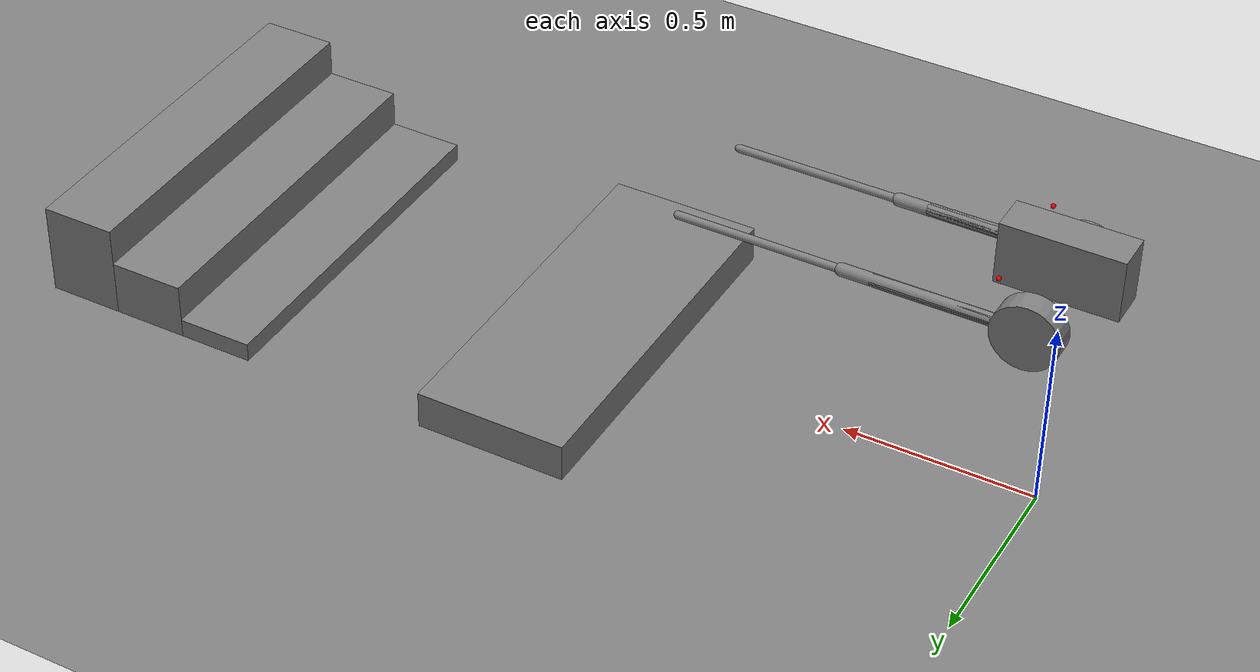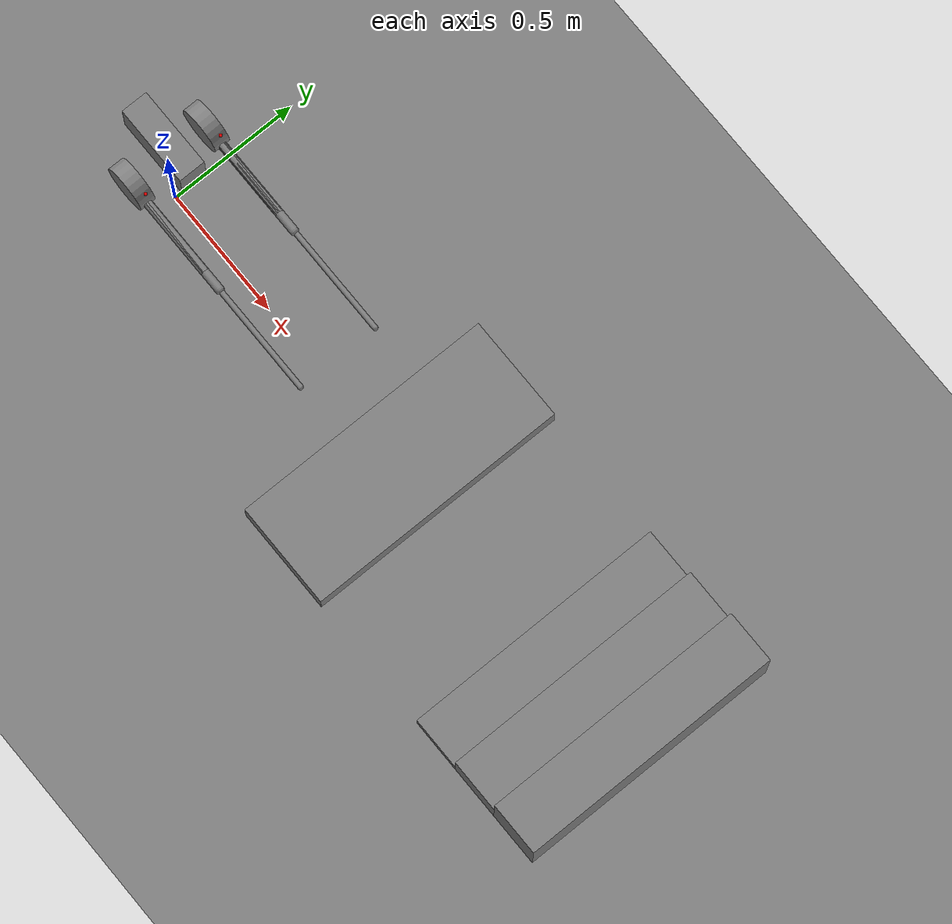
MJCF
<mujoco model="two_wheel_leg_planar">

  <!-- Units: meters, kg, seconds -->
  <compiler angle="degree" coordinate="local"/>
  <option timestep="0.001" integrator="RK4" solver="Newton" gravity="0 0 -9.81"
          iterations="100" tolerance="1e-12"/>

  <!-- Defaults: keep contact stable early -->
  <default>
    <joint damping="2.0" armature="0.02" limited="true"/>
    <geom contype="1" conaffinity="1" density="500" friction="1.2 0.1 0.01"
          solref="0.01 1" solimp="0.99 0.999 0.001" />
    <motor ctrlrange="-1 1" ctrllimited="true"/>
  </default>

  <asset>
    <!-- Optional: add meshes later for visuals only -->
  </asset>

  <worldbody>

    <!-- Ground -->
    <geom name="ground" type="plane" pos="0 0 0" size="5 5 0.1" friction="1.2 0.02 0.002"/>

    <!-- A curb (toggle contype/conaffinity to 0 to disable) -->
    <geom name="curb" type="box" pos="1.2 0 0.05" size="0.2 0.5 0.05" friction="1.2 0.02 0.002"/>

    <!-- Simple stairs: three steps (edit rise/run here) -->
    <!-- Step rise = 0.05, run = 0.20 -->
    <geom name="step1" type="box" pos="2.0 0 0.025" size="0.10 0.50 0.025"/>
    <geom name="step2" type="box" pos="2.2 0 0.075" size="0.10 0.50 0.075"/>
    <geom name="step3" type="box" pos="2.4 0 0.125" size="0.10 0.50 0.125"/>

    <!-- Robot root: full 3D floating base -->
    <body name="torso" pos="0 0 0.60">

      <!-- Free joint: x, y, z, and quaternion -->
      <joint name="base" type="free"/>

      <!-- Put real mass/inertia here once you export from CAD -->
      <inertial pos="0 0 0" mass="600.0" diaginertia="10.00 10.00 10.00"/>

      <!-- Optional torso collision (keep simple) -->
      <geom name="torso_geom" type="box" pos="0 0 0.10" size="0.15 0.05 0.08" contype="1" conaffinity="1"/>

      <!-- Reference sites on torso (track width = 0.310 m) -->
      <site name="H_L"  pos="0.00000  0.15500 0.00000" size="0.006" rgba="0 0 0 1"/>
      <site name="H_R"  pos="0.00000 -0.15500 0.00000" size="0.006" rgba="0 0 0 1"/>
      <site name="Bc_L" pos="0.09893  0.15500 0.11576" size="0.006" rgba="1 0 0 1"/>
      <site name="Bc_R" pos="0.09893 -0.15500 0.11576" size="0.006" rgba="1 0 0 1"/>

      <!-- IMU site (you can move it to match your real IMU location) -->
      <site name="imu" pos="0 0 0.12" size="0.006"/>

      <!-- Left linkage (Y+): H_L -> K_L -> W_L / C_L -->
      <body name="left_leg" pos="0 0.155 0">

        <body name="upper_L" pos="0 0 0">
          <joint name="hip_L" type="hinge" axis="0 1 0" range="23.95 61.04"/>
          <inertial pos="0.18 0 0" mass="100.0" diaginertia="2.50 2.50 0.50"/>

          <site name="K_L" pos="0.39609 0 0" size="0.006" rgba="0 0 1 1"/>
          <geom name="upper_capsule_L" type="capsule"
                fromto="0 0 0   0.39609 0 0" size="0.016"/>

          <body name="lower_L" pos="0.39609 0 0">
            <joint name="knee_L" type="hinge" axis="0 1 0" range="-121.6 -41.73"/>
            <inertial pos="0.19 0 0" mass="80.0" diaginertia="1.20 1.20 0.30"/>

            <site name="W_L" pos="-0.37996 0 0" size="0.006" rgba="0.6 0.6 0.6 1"/>
            <site name="C_L" pos=" 0.07506 0 0" size="0.006" rgba="0 1 0 1"/>

            <geom name="lower_capsule_L" type="capsule"
                  fromto="-0.37996 0 0   0.07506 0 0" size="0.016"/>

            <!-- Rod link: C_L -> Bc_L (C is a real joint now) -->
            <body name="rod_L" pos="0.07506 0 0">
              <joint name="C_L" type="hinge" axis="0 1 0" range="-180 0"/>
              <site name="rod_tip_L" pos="0.41762 0 0" size="0.006"/>
              <geom name="rod_capsule_L" type="capsule"
                    fromto="0 0 0   0.41762 0 0" size="0.010"/>
            </body>

            <body name="wheel_L" pos="-0.37996 0 0">
              <joint name="wheel_L" type="hinge" axis="0 1 0" range="-100000 100000"/>
              <geom name="wheel_geom_L" type="cylinder"
                    size="0.085 0.03"
                    euler="90 0 0"
                    friction="1.4 0.02 0.002"
                    density="300"/>
            </body>
          </body>
        </body>
      </body>

      <!-- Right linkage (Y-): H_R -> K_R -> W_R / C_R -->
      <body name="right_leg" pos="0 -0.155 0">

        <body name="upper_R" pos="0 0 0">
          <joint name="hip_R" type="hinge" axis="0 1 0" range="23.95 61.04"/>
          <inertial pos="0.18 0 0" mass="100.0" diaginertia="2.50 2.50 0.50"/>

          <site name="K_R" pos="0.39609 0 0" size="0.006" rgba="0 0 1 1"/>
          <geom name="upper_capsule_R" type="capsule"
                fromto="0 0 0   0.39609 0 0" size="0.016"/>

          <body name="lower_R" pos="0.39609 0 0">
            <joint name="knee_R" type="hinge" axis="0 1 0" range="-121.6 -41.73"/>
            <inertial pos="0.19 0 0" mass="80.0" diaginertia="1.20 1.20 0.30"/>

            <site name="W_R" pos="-0.37996 0 0" size="0.006" rgba="0.6 0.6 0.6 1"/>
            <site name="C_R" pos=" 0.07506 0 0" size="0.006" rgba="0 1 0 1"/>

            <geom name="lower_capsule_R" type="capsule"
                  fromto="-0.37996 0 0   0.07506 0 0" size="0.016"/>

            <!-- Rod link: C_R -> Bc_R (C is a real joint now) -->
            <body name="rod_R" pos="0.07506 0 0">
              <joint name="C_R" type="hinge" axis="0 1 0" range="-180 0"/>
              <site name="rod_tip_R" pos="0.41762 0 0" size="0.006"/>
              <geom name="rod_capsule_R" type="capsule"
                    fromto="0 0 0   0.41762 0 0" size="0.010"/>
            </body>

            <body name="wheel_R" pos="-0.37996 0 0">
              <joint name="wheel_R" type="hinge" axis="0 1 0" range="-100000 100000"/>
              <geom name="wheel_geom_R" type="cylinder"
                    size="0.085 0.03"
                    euler="90 0 0"
                    friction="1.4 0.02 0.002"
                    density="300"/>
            </body>
          </body>
        </body>
      </body>

    </body>
  </worldbody>

  <!-- Close the kinematic loops: rod ends coincide with torso Bc points -->
<equality>
  <connect name="loop_BcC_L" site1="rod_tip_L" site2="Bc_L"
           solref="0.0005 1" solimp="0.99 0.999 0.001"/>
  <connect name="loop_BcC_R" site1="rod_tip_R" site2="Bc_R"
           solref="0.0005 1" solimp="0.99 0.999 0.001"/>
</equality>

  <!-- Actuators: hip position servo + wheel torque motor -->
  <actuator>
    <!-- Hip ctrl is target angle (degrees in XML, radians at runtime) -->
    <position name="act_hip_L" joint="hip_L" kp="10" kv="1"
              ctrllimited="true" ctrlrange="23.95 61.04"/>
    <motor name="act_wheel_L" joint="wheel_L" gear="25"/>
    <position name="act_hip_R" joint="hip_R" kp="10" kv="1"
              ctrllimited="true" ctrlrange="23.95 61.04"/>
    <motor name="act_wheel_R" joint="wheel_R" gear="25"/>
    <!-- If knee is actuated, enable this -->
  </actuator>

  <!-- Sensors (optional but useful) -->
  <sensor>
    <gyro name="gyro" site="imu"/>
    <accelerometer name="acc" site="imu"/>
    <jointpos name="q_hip_L" joint="hip_L"/>
    <jointvel name="qd_hip_L" joint="hip_L"/>
    <jointpos name="q_knee_L" joint="knee_L"/>
    <jointvel name="qd_knee_L" joint="knee_L"/>
    <jointpos name="q_wheel_L" joint="wheel_L"/>
    <jointvel name="qd_wheel_L" joint="wheel_L"/>
    <jointpos name="q_C_L" joint="C_L"/>
    <jointvel name="qd_C_L" joint="C_L"/>

    <jointpos name="q_hip_R" joint="hip_R"/>
    <jointvel name="qd_hip_R" joint="hip_R"/>
    <jointpos name="q_knee_R" joint="knee_R"/>
    <jointvel name="qd_knee_R" joint="knee_R"/>
    <jointpos name="q_wheel_R" joint="wheel_R"/>
    <jointvel name="qd_wheel_R" joint="wheel_R"/>
    <jointpos name="q_C_R" joint="C_R"/>
    <jointvel name="qd_C_R" joint="C_R"/>
  </sensor>

  <!-- Initial pose: hip/rod angles chosen to satisfy the rod length for HC=0.32103 -->
<keyframe>
  <!-- qpos order: base (7) hip_L knee_L C_L wheel_L hip_R knee_R C_R wheel_R -->
  <key name="r0"
       qpos="0 0 0.37438  1 0 0 0   23.9507 -43.7348 -123.2482 0   23.9507 -43.7348 -123.2482 0"/>
</keyframe>

</mujoco>
